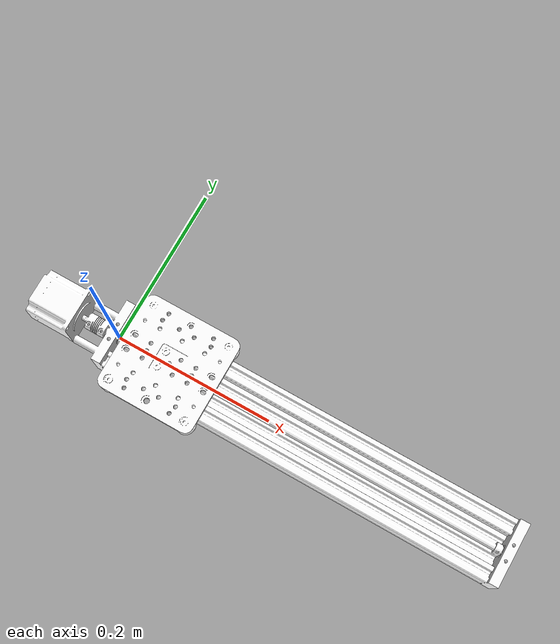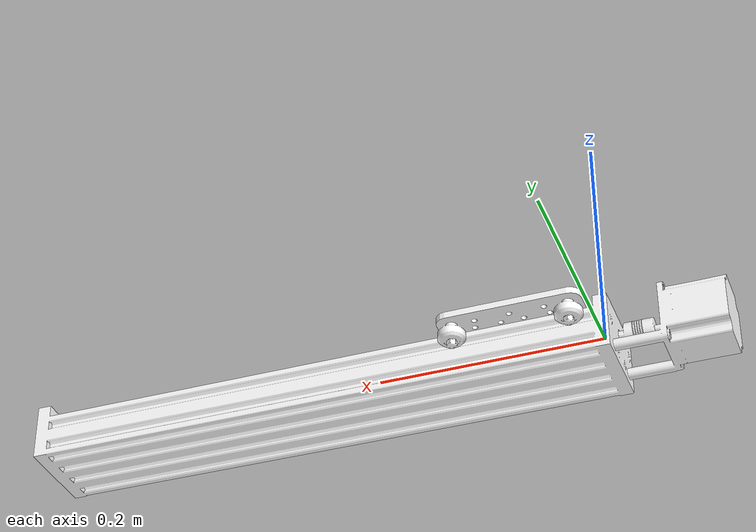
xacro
<?xml version="1.0"?>
<robot
  name="sting_carriage"
  xmlns:xacro="http://www.ros.org/wiki/xacro">

  <xacro:include filename="$(find sting_carriage_description)/urdf/sting_carriage.xacro" />

  <xacro:property name="base_link" value="base_link" />

  <link name="base_link" />
  <xacro:sting_carriage base_link="${base_link}" />

</robot>

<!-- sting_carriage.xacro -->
<robot
    xmlns:xacro="http://www.ros.org/wiki/xacro">
    <xacro:macro name="sting_carriage" params="base_link payload:=payload">
        <joint
            name="carriage_base_joint"
            type="fixed">
            <parent
                link="${base_link}" />
            <child
                link="carriage_base" />
        </joint>
        <link
            name="carriage_base">
            <inertial>
                <origin
                    xyz="0.168470001541672 3.81834085849686E-06 -0.00990038826765847"
                    rpy="0 0 0" />
                <mass
                    value="0.695201759420563" />
                <inertia
                    ixx="0.000521513476559902"
                    ixy="4.69872062195191E-07"
                    ixz="0.00051877667389809"
                    iyy="0.0292099358589963"
                    iyz="-3.00386636426339E-08"
                    izz="0.0294377821647163" />
            </inertial>
            <visual>
                <origin
                    xyz="0 0 0"
                    rpy="0 0 0" />
                <geometry>
                    <mesh
                        filename="package://sting_carriage_description/meshes/carriage_base.STL" />
                </geometry>
                <material
                    name="">
                    <color
                        rgba="1 1 1 1" />
                </material>
            </visual>
            <collision>
                <origin
                    xyz="0 0 0"
                    rpy="0 0 0" />
                <geometry>
                    <mesh
                        filename="package://sting_carriage_description/meshes/carriage_base_collision.STL" />
                </geometry>
            </collision>
        </link>
        <link
            name="carriage_slider">
            <inertial>
                <origin
                    xyz="0.000156693213846128 -0.0618128630425793 -0.00323427667463495"
                    rpy="0 0 0" />
                <mass
                    value="0.112932852597131" />
                <inertia
                    ixx="0.000168948390924987"
                    ixy="1.21595914488396E-08"
                    ixz="-8.88631626187852E-08"
                    iyy="0.000168996514994476"
                    iyz="6.33431160386277E-07"
                    izz="0.000329383199257969" />
            </inertial>
            <visual>
                <origin
                    xyz="0 0 0"
                    rpy="0 0 0" />
                <geometry>
                    <mesh
                        filename="package://sting_carriage_description/meshes/carriage_slider.STL" />
                </geometry>
                <material
                    name="">
                    <color
                        rgba="1 1 1 1" />
                </material>
            </visual>
            <collision>
                <origin
                    xyz="0 0 0"
                    rpy="0 0 0" />
                <geometry>
                    <mesh
                        filename="package://sting_carriage_description/meshes/carriage_slider_collision.STL" />
                </geometry>
            </collision>
        </link>
        <joint
            name="slider_joint"
            type="prismatic">
            <origin
                xyz="0.00600000000000045 0 0.0123000000000001"
                rpy="-2.61195978578554E-14 1.20485688601907E-14 1.57079632679491" />
            <parent
                link="carriage_base" />
            <child
                link="carriage_slider" />
            <axis
                xyz="0 -1 0" />
            <limit
                lower="0"
                upper="0.367"
                effort="1.1"
                velocity="0.2" />
        </joint>
        <link name="${payload}" />
        <joint
            name="payload_joint"
            type="fixed">
            <origin
                xyz="0.0430500000000003 -0.0625000000000459 0.00300000000000002"
                rpy="3.15544362088405E-30 -7.26931742313452E-18 7.23883640127473E-17" />
            <parent
                link="carriage_slider" />
            <child
                link="${payload}" />
            <axis
                xyz="0 0 0" />
        </joint>
    </xacro:macro>
</robot>
